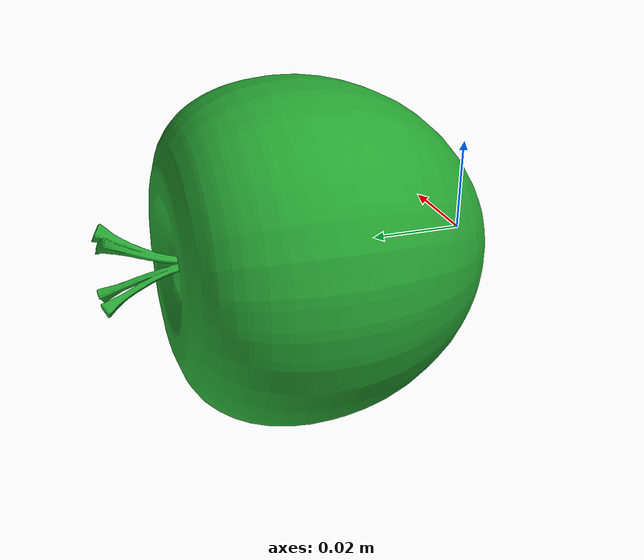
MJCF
<mujoco model="green_apple">
  <asset>
    <mesh name="green_apple_visual" file="green_apple_visual.obj"/>
    <mesh name="green_apple_collision" file="green_apple_collision.stl"/>
    <texture name="green_apple_tex" type="2d" file="green_apple.png"/>
    <material name="green_apple_mat" texture="green_apple_tex"/>
  </asset>
  <worldbody>
    <body name="green_apple" pos="0 0 0">
      <freejoint/>
      <geom type="mesh" mesh="green_apple_visual" material="green_apple_mat"
            mass="0.1014" contype="0" conaffinity="0"/>
      <geom type="mesh" mesh="green_apple_collision" mass="0"
            contype="1" conaffinity="1"
            friction="0.5 .005 0.01"
            rgba="0 0 0 0"/>
    </body>
  </worldbody>
</mujoco>
